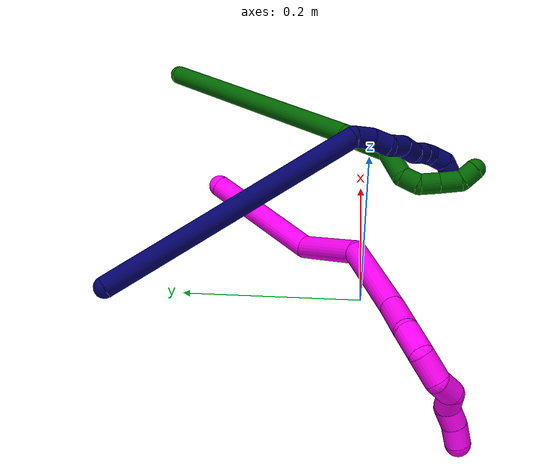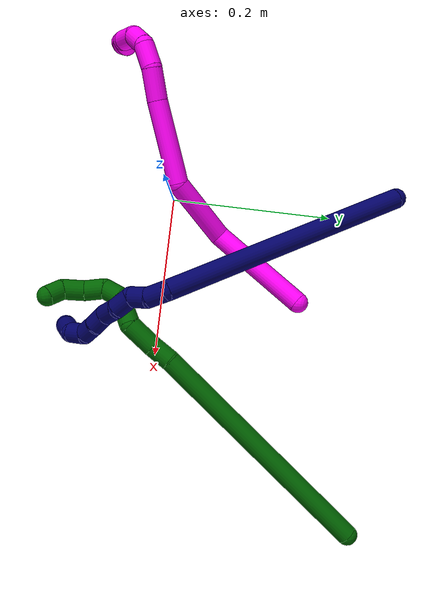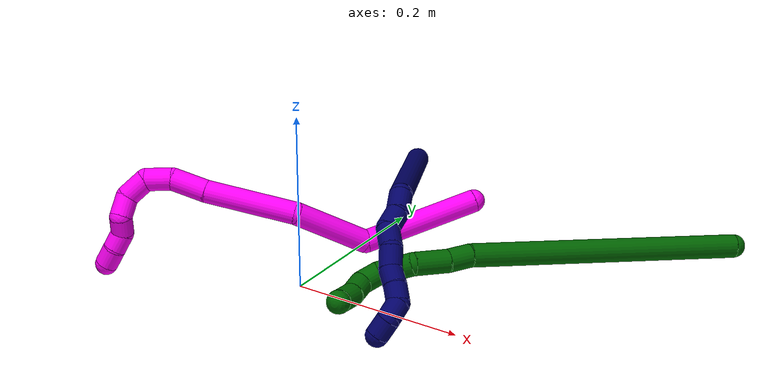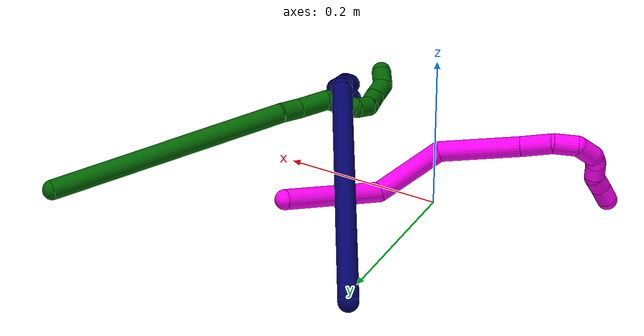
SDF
<sdf version="1.7">
 <world name="default">
  <model name="6">
   <static>0</static>
   <link name="6">
    <collision name="collision-cylinder-e_1_1_4">
     <pose>-0.078487 -0.091529 -0.092231 2.36002 -0.543374 -1.18913</pose>
     <geometry><cylinder><radius>0.0125</radius><length>0.303608</length></cylinder></geometry>
     <surface>
      <friction><ode><mu>1.16</mu><mu2>1.16</mu2><slip1>0</slip1><slip2>0</slip2></ode></friction>
      <contact><ode><kp>1e+06</kp><kd>1</kd><max_vel>0</max_vel><min_depth>0.001</min_depth></ode></contact>
     </surface>
    </collision>
    <visual name="visual-cylinder-e_1_1_4">
     <pose>-0.078487 -0.091529 -0.092231 2.36002 -0.543374 -1.18913</pose>
     <geometry><cylinder><radius>0.0125</radius><length>0.303608</length></cylinder></geometry>
     <material><ambient>0 0.392157 0.003922 1</ambient></material>
    </visual>
    <collision name="collision-cylinder-e_2_4_5">
     <pose>-0.16498 -0.188844 -0.192778 2.53369 -0.668835 -1.67295</pose>
     <geometry><cylinder><radius>0.0125</radius><length>0.025824</length></cylinder></geometry>
     <surface>
      <friction><ode><mu>1.16</mu><mu2>1.16</mu2><slip1>0</slip1><slip2>0</slip2></ode></friction>
      <contact><ode><kp>1e+06</kp><kd>1</kd><max_vel>0</max_vel><min_depth>0.001</min_depth></ode></contact>
     </surface>
    </collision>
    <visual name="visual-cylinder-e_2_4_5">
     <pose>-0.16498 -0.188844 -0.192778 2.53369 -0.668835 -1.67295</pose>
     <geometry><cylinder><radius>0.0125</radius><length>0.025824</length></cylinder></geometry>
     <material><ambient>0 0.392157 0.003922 1</ambient></material>
    </visual>
    <collision name="collision-cylinder-e_3_5_6">
     <pose>-0.183452 -0.205377 -0.212899 2.40315 -0.580293 -1.31432</pose>
     <geometry><cylinder><radius>0.0125</radius><length>0.03818</length></cylinder></geometry>
     <surface>
      <friction><ode><mu>1.16</mu><mu2>1.16</mu2><slip1>0</slip1><slip2>0</slip2></ode></friction>
      <contact><ode><kp>1e+06</kp><kd>1</kd><max_vel>0</max_vel><min_depth>0.001</min_depth></ode></contact>
     </surface>
    </collision>
    <visual name="visual-cylinder-e_3_5_6">
     <pose>-0.183452 -0.205377 -0.212899 2.40315 -0.580293 -1.31432</pose>
     <geometry><cylinder><radius>0.0125</radius><length>0.03818</length></cylinder></geometry>
     <material><ambient>0 0.392157 0.003922 1</ambient></material>
    </visual>
    <collision name="collision-cylinder-e_4_6_7">
     <pose>-0.21029 -0.22583 -0.227246 1.82681 -1.02096 -1.25519</pose>
     <geometry><cylinder><radius>0.0125</radius><length>0.038403</length></cylinder></geometry>
     <surface>
      <friction><ode><mu>1.16</mu><mu2>1.16</mu2><slip1>0</slip1><slip2>0</slip2></ode></friction>
      <contact><ode><kp>1e+06</kp><kd>1</kd><max_vel>0</max_vel><min_depth>0.001</min_depth></ode></contact>
     </surface>
    </collision>
    <visual name="visual-cylinder-e_4_6_7">
     <pose>-0.21029 -0.22583 -0.227246 1.82681 -1.02096 -1.25519</pose>
     <geometry><cylinder><radius>0.0125</radius><length>0.038403</length></cylinder></geometry>
     <material><ambient>0 0.392157 0.003922 1</ambient></material>
    </visual>
    <collision name="collision-cylinder-e_5_7_8">
     <pose>-0.234239 -0.237724 -0.237274 2.85732 -0.770957 -2.46352</pose>
     <geometry><cylinder><radius>0.0125</radius><length>0.02175</length></cylinder></geometry>
     <surface>
      <friction><ode><mu>1.16</mu><mu2>1.16</mu2><slip1>0</slip1><slip2>0</slip2></ode></friction>
      <contact><ode><kp>1e+06</kp><kd>1</kd><max_vel>0</max_vel><min_depth>0.001</min_depth></ode></contact>
     </surface>
    </collision>
    <visual name="visual-cylinder-e_5_7_8">
     <pose>-0.234239 -0.237724 -0.237274 2.85732 -0.770957 -2.46352</pose>
     <geometry><cylinder><radius>0.0125</radius><length>0.02175</length></cylinder></geometry>
     <material><ambient>0 0.392157 0.003922 1</ambient></material>
    </visual>
    <collision name="collision-cylinder-e_6_8_9">
     <pose>-0.245162 -0.238022 -0.256435 -2.98113 -0.275689 2.09104</pose>
     <geometry><cylinder><radius>0.0125</radius><length>0.02458</length></cylinder></geometry>
     <surface>
      <friction><ode><mu>1.16</mu><mu2>1.16</mu2><slip1>0</slip1><slip2>0</slip2></ode></friction>
      <contact><ode><kp>1e+06</kp><kd>1</kd><max_vel>0</max_vel><min_depth>0.001</min_depth></ode></contact>
     </surface>
    </collision>
    <visual name="visual-cylinder-e_6_8_9">
     <pose>-0.245162 -0.238022 -0.256435 -2.98113 -0.275689 2.09104</pose>
     <geometry><cylinder><radius>0.0125</radius><length>0.02458</length></cylinder></geometry>
     <material><ambient>0 0.392157 0.003922 1</ambient></material>
    </visual>
    <collision name="collision-cylinder-e_7_9_10">
     <pose>-0.251644 -0.237091 -0.280954 3.06715 -0.238842 -2.53978</pose>
     <geometry><cylinder><radius>0.0125</radius><length>0.026515</length></cylinder></geometry>
     <surface>
      <friction><ode><mu>1.16</mu><mu2>1.16</mu2><slip1>0</slip1><slip2>0</slip2></ode></friction>
      <contact><ode><kp>1e+06</kp><kd>1</kd><max_vel>0</max_vel><min_depth>0.001</min_depth></ode></contact>
     </surface>
    </collision>
    <visual name="visual-cylinder-e_7_9_10">
     <pose>-0.251644 -0.237091 -0.280954 3.06715 -0.238842 -2.53978</pose>
     <geometry><cylinder><radius>0.0125</radius><length>0.026515</length></cylinder></geometry>
     <material><ambient>0 0.392157 0.003922 1</ambient></material>
    </visual>
    <collision name="collision-cylinder-e_8_10_2">
     <pose>-0.251052 -0.237196 -0.303654 -3.05531 0.360541 -2.67645</pose>
     <geometry><cylinder><radius>0.0125</radius><length>0.021141</length></cylinder></geometry>
     <surface>
      <friction><ode><mu>1.16</mu><mu2>1.16</mu2><slip1>0</slip1><slip2>0</slip2></ode></friction>
      <contact><ode><kp>1e+06</kp><kd>1</kd><max_vel>0</max_vel><min_depth>0.001</min_depth></ode></contact>
     </surface>
    </collision>
    <visual name="visual-cylinder-e_8_10_2">
     <pose>-0.251052 -0.237196 -0.303654 -3.05531 0.360541 -2.67645</pose>
     <geometry><cylinder><radius>0.0125</radius><length>0.021141</length></cylinder></geometry>
     <material><ambient>0 0.392157 0.003922 1</ambient></material>
    </visual>
    <collision name="collision-sphere-2">
     <pose>-0.247323 -0.236344 -0.313508 0 -0 0</pose>
     <geometry><sphere><radius>0.0125</radius></sphere></geometry>
     <surface>
      <friction><ode><mu>1.16</mu><mu2>1.16</mu2><slip1>0</slip1><slip2>0</slip2></ode></friction>
      <contact><ode><kp>1e+06</kp><kd>1</kd><max_vel>0</max_vel><min_depth>0.001</min_depth></ode></contact>
     </surface>
    </collision>
    <visual name="visual-sphere-2">
     <pose>-0.247323 -0.236344 -0.313508 0 -0 0</pose>
     <geometry><sphere><radius>0.0125</radius></sphere></geometry>
     <material><ambient>0 0.392157 0.003922 1</ambient></material>
    </visual>
    <collision name="collision-sphere-10">
     <pose>-0.254781 -0.238049 -0.2938 0 -0 0</pose>
     <geometry><sphere><radius>0.0125</radius></sphere></geometry>
     <surface>
      <friction><ode><mu>1.16</mu><mu2>1.16</mu2><slip1>0</slip1><slip2>0</slip2></ode></friction>
      <contact><ode><kp>1e+06</kp><kd>1</kd><max_vel>0</max_vel><min_depth>0.001</min_depth></ode></contact>
     </surface>
    </collision>
    <visual name="visual-sphere-10">
     <pose>-0.254781 -0.238049 -0.2938 0 -0 0</pose>
     <geometry><sphere><radius>0.0125</radius></sphere></geometry>
     <material><ambient>0 0.392157 0.003922 1</ambient></material>
    </visual>
    <collision name="collision-sphere-9">
     <pose>-0.248508 -0.236133 -0.268109 0 -0 0</pose>
     <geometry><sphere><radius>0.0125</radius></sphere></geometry>
     <surface>
      <friction><ode><mu>1.16</mu><mu2>1.16</mu2><slip1>0</slip1><slip2>0</slip2></ode></friction>
      <contact><ode><kp>1e+06</kp><kd>1</kd><max_vel>0</max_vel><min_depth>0.001</min_depth></ode></contact>
     </surface>
    </collision>
    <visual name="visual-sphere-9">
     <pose>-0.248508 -0.236133 -0.268109 0 -0 0</pose>
     <geometry><sphere><radius>0.0125</radius></sphere></geometry>
     <material><ambient>0 0.392157 0.003922 1</ambient></material>
    </visual>
    <collision name="collision-sphere-4">
     <pose>-0.156973 -0.183059 -0.184463 0 -0 0</pose>
     <geometry><sphere><radius>0.0125</radius></sphere></geometry>
     <surface>
      <friction><ode><mu>1.16</mu><mu2>1.16</mu2><slip1>0</slip1><slip2>0</slip2></ode></friction>
      <contact><ode><kp>1e+06</kp><kd>1</kd><max_vel>0</max_vel><min_depth>0.001</min_depth></ode></contact>
     </surface>
    </collision>
    <visual name="visual-sphere-4">
     <pose>-0.156973 -0.183059 -0.184463 0 -0 0</pose>
     <geometry><sphere><radius>0.0125</radius></sphere></geometry>
     <material><ambient>0 0.392157 0.003922 1</ambient></material>
    </visual>
    <collision name="collision-sphere-1">
     <geometry><sphere><radius>0.0125</radius></sphere></geometry>
     <surface>
      <friction><ode><mu>1.16</mu><mu2>1.16</mu2><slip1>0</slip1><slip2>0</slip2></ode></friction>
      <contact><ode><kp>1e+06</kp><kd>1</kd><max_vel>0</max_vel><min_depth>0.001</min_depth></ode></contact>
     </surface>
    </collision>
    <visual name="visual-sphere-1">
     <geometry><sphere><radius>0.0125</radius></sphere></geometry>
     <material><ambient>0 0.392157 0.003922 1</ambient></material>
    </visual>
    <collision name="collision-sphere-8">
     <pose>-0.241817 -0.239911 -0.244761 0 -0 0</pose>
     <geometry><sphere><radius>0.0125</radius></sphere></geometry>
     <surface>
      <friction><ode><mu>1.16</mu><mu2>1.16</mu2><slip1>0</slip1><slip2>0</slip2></ode></friction>
      <contact><ode><kp>1e+06</kp><kd>1</kd><max_vel>0</max_vel><min_depth>0.001</min_depth></ode></contact>
     </surface>
    </collision>
    <visual name="visual-sphere-8">
     <pose>-0.241817 -0.239911 -0.244761 0 -0 0</pose>
     <geometry><sphere><radius>0.0125</radius></sphere></geometry>
     <material><ambient>0 0.392157 0.003922 1</ambient></material>
    </visual>
    <collision name="collision-sphere-5">
     <pose>-0.172986 -0.19463 -0.201093 0 -0 0</pose>
     <geometry><sphere><radius>0.0125</radius></sphere></geometry>
     <surface>
      <friction><ode><mu>1.16</mu><mu2>1.16</mu2><slip1>0</slip1><slip2>0</slip2></ode></friction>
      <contact><ode><kp>1e+06</kp><kd>1</kd><max_vel>0</max_vel><min_depth>0.001</min_depth></ode></contact>
     </surface>
    </collision>
    <visual name="visual-sphere-5">
     <pose>-0.172986 -0.19463 -0.201093 0 -0 0</pose>
     <geometry><sphere><radius>0.0125</radius></sphere></geometry>
     <material><ambient>0 0.392157 0.003922 1</ambient></material>
    </visual>
    <collision name="collision-sphere-6">
     <pose>-0.193919 -0.216123 -0.224706 0 -0 0</pose>
     <geometry><sphere><radius>0.0125</radius></sphere></geometry>
     <surface>
      <friction><ode><mu>1.16</mu><mu2>1.16</mu2><slip1>0</slip1><slip2>0</slip2></ode></friction>
      <contact><ode><kp>1e+06</kp><kd>1</kd><max_vel>0</max_vel><min_depth>0.001</min_depth></ode></contact>
     </surface>
    </collision>
    <visual name="visual-sphere-6">
     <pose>-0.193919 -0.216123 -0.224706 0 -0 0</pose>
     <geometry><sphere><radius>0.0125</radius></sphere></geometry>
     <material><ambient>0 0.392157 0.003922 1</ambient></material>
    </visual>
    <collision name="collision-sphere-7">
     <pose>-0.226661 -0.235536 -0.229787 0 -0 0</pose>
     <geometry><sphere><radius>0.0125</radius></sphere></geometry>
     <surface>
      <friction><ode><mu>1.16</mu><mu2>1.16</mu2><slip1>0</slip1><slip2>0</slip2></ode></friction>
      <contact><ode><kp>1e+06</kp><kd>1</kd><max_vel>0</max_vel><min_depth>0.001</min_depth></ode></contact>
     </surface>
    </collision>
    <visual name="visual-sphere-7">
     <pose>-0.226661 -0.235536 -0.229787 0 -0 0</pose>
     <geometry><sphere><radius>0.0125</radius></sphere></geometry>
     <material><ambient>0 0.392157 0.003922 1</ambient></material>
    </visual>
    <inertial>
     <pose>-0.13254 -0.143003 -0.150337 0 -0 0</pose>
     <mass>0.5</mass>
     <inertia>
      <ixx>-0.001148</ixx>
      <ixy>0</ixy>
      <ixz>0</ixz>
      <iyy>-0.001706</iyy>
      <iyz>0</iyz>
      <izz>0.00262</izz>
     </inertia>
    </inertial>
   </link>
   <pose>0.387752 0.261784 0.046021 -1.99849 -0.865846 0.596641</pose>
  </model>
  <model name="7">
   <static>0</static>
   <link name="7">
    <collision name="collision-cylinder-e_1_1_4">
     <pose>0.126047 -0.098837 0.012875 1.44126 0.901719 0.803984</pose>
     <geometry><cylinder><radius>0.0125</radius><length>0.321388</length></cylinder></geometry>
     <surface>
      <friction><ode><mu>1.16</mu><mu2>1.16</mu2><slip1>0</slip1><slip2>0</slip2></ode></friction>
      <contact><ode><kp>1e+06</kp><kd>1</kd><max_vel>0</max_vel><min_depth>0.001</min_depth></ode></contact>
     </surface>
    </collision>
    <visual name="visual-cylinder-e_1_1_4">
     <pose>0.126047 -0.098837 0.012875 1.44126 0.901719 0.803984</pose>
     <geometry><cylinder><radius>0.0125</radius><length>0.321388</length></cylinder></geometry>
     <material><ambient>0.003922 0 0.403922 1</ambient></material>
    </visual>
    <collision name="collision-cylinder-e_2_4_5">
     <pose>0.255888 -0.209045 0.021946 1.89368 0.306398 0.422571</pose>
     <geometry><cylinder><radius>0.0125</radius><length>0.025151</length></cylinder></geometry>
     <surface>
      <friction><ode><mu>1.16</mu><mu2>1.16</mu2><slip1>0</slip1><slip2>0</slip2></ode></friction>
      <contact><ode><kp>1e+06</kp><kd>1</kd><max_vel>0</max_vel><min_depth>0.001</min_depth></ode></contact>
     </surface>
    </collision>
    <visual name="visual-cylinder-e_2_4_5">
     <pose>0.255888 -0.209045 0.021946 1.89368 0.306398 0.422571</pose>
     <geometry><cylinder><radius>0.0125</radius><length>0.025151</length></cylinder></geometry>
     <material><ambient>0.003922 0 0.403922 1</ambient></material>
    </visual>
    <collision name="collision-cylinder-e_3_5_6">
     <pose>0.259936 -0.231539 0.017142 1.66034 0.022849 0.024993</pose>
     <geometry><cylinder><radius>0.0125</radius><length>0.022343</length></cylinder></geometry>
     <surface>
      <friction><ode><mu>1.16</mu><mu2>1.16</mu2><slip1>0</slip1><slip2>0</slip2></ode></friction>
      <contact><ode><kp>1e+06</kp><kd>1</kd><max_vel>0</max_vel><min_depth>0.001</min_depth></ode></contact>
     </surface>
    </collision>
    <visual name="visual-cylinder-e_3_5_6">
     <pose>0.259936 -0.231539 0.017142 1.66034 0.022849 0.024993</pose>
     <geometry><cylinder><radius>0.0125</radius><length>0.022343</length></cylinder></geometry>
     <material><ambient>0.003922 0 0.403922 1</ambient></material>
    </visual>
    <collision name="collision-cylinder-e_4_6_7">
     <pose>0.264541 -0.25223 0.009377 2.18642 0.355418 0.668052</pose>
     <geometry><cylinder><radius>0.0125</radius><length>0.025</length></cylinder></geometry>
     <surface>
      <friction><ode><mu>1.16</mu><mu2>1.16</mu2><slip1>0</slip1><slip2>0</slip2></ode></friction>
      <contact><ode><kp>1e+06</kp><kd>1</kd><max_vel>0</max_vel><min_depth>0.001</min_depth></ode></contact>
     </surface>
    </collision>
    <visual name="visual-cylinder-e_4_6_7">
     <pose>0.264541 -0.25223 0.009377 2.18642 0.355418 0.668052</pose>
     <geometry><cylinder><radius>0.0125</radius><length>0.025</length></cylinder></geometry>
     <material><ambient>0.003922 0 0.403922 1</ambient></material>
    </visual>
    <collision name="collision-cylinder-e_5_7_8">
     <pose>0.268859 -0.271703 -0.004106 2.16656 -0.002708 -0.005108</pose>
     <geometry><cylinder><radius>0.0125</radius><length>0.023935</length></cylinder></geometry>
     <surface>
      <friction><ode><mu>1.16</mu><mu2>1.16</mu2><slip1>0</slip1><slip2>0</slip2></ode></friction>
      <contact><ode><kp>1e+06</kp><kd>1</kd><max_vel>0</max_vel><min_depth>0.001</min_depth></ode></contact>
     </surface>
    </collision>
    <visual name="visual-cylinder-e_5_7_8">
     <pose>0.268859 -0.271703 -0.004106 2.16656 -0.002708 -0.005108</pose>
     <geometry><cylinder><radius>0.0125</radius><length>0.023935</length></cylinder></geometry>
     <material><ambient>0.003922 0 0.403922 1</ambient></material>
    </visual>
    <collision name="collision-cylinder-e_6_8_9">
     <pose>0.272514 -0.288908 -0.017359 2.3012 0.359959 0.773425</pose>
     <geometry><cylinder><radius>0.0125</radius><length>0.02094</length></cylinder></geometry>
     <surface>
      <friction><ode><mu>1.16</mu><mu2>1.16</mu2><slip1>0</slip1><slip2>0</slip2></ode></friction>
      <contact><ode><kp>1e+06</kp><kd>1</kd><max_vel>0</max_vel><min_depth>0.001</min_depth></ode></contact>
     </surface>
    </collision>
    <visual name="visual-cylinder-e_6_8_9">
     <pose>0.272514 -0.288908 -0.017359 2.3012 0.359959 0.773425</pose>
     <geometry><cylinder><radius>0.0125</radius><length>0.02094</length></cylinder></geometry>
     <material><ambient>0.003922 0 0.403922 1</ambient></material>
    </visual>
    <collision name="collision-cylinder-e_7_9_10">
     <pose>0.278251 -0.303719 -0.030177 2.26713 0.206315 0.435941</pose>
     <geometry><cylinder><radius>0.0125</radius><length>0.020007</length></cylinder></geometry>
     <surface>
      <friction><ode><mu>1.16</mu><mu2>1.16</mu2><slip1>0</slip1><slip2>0</slip2></ode></friction>
      <contact><ode><kp>1e+06</kp><kd>1</kd><max_vel>0</max_vel><min_depth>0.001</min_depth></ode></contact>
     </surface>
    </collision>
    <visual name="visual-cylinder-e_7_9_10">
     <pose>0.278251 -0.303719 -0.030177 2.26713 0.206315 0.435941</pose>
     <geometry><cylinder><radius>0.0125</radius><length>0.020007</length></cylinder></geometry>
     <material><ambient>0.003922 0 0.403922 1</ambient></material>
    </visual>
    <collision name="collision-cylinder-e_8_10_11">
     <pose>0.27975 -0.321599 -0.037373 1.65886 -0.052855 -0.057724</pose>
     <geometry><cylinder><radius>0.0125</radius><length>0.020846</length></cylinder></geometry>
     <surface>
      <friction><ode><mu>1.16</mu><mu2>1.16</mu2><slip1>0</slip1><slip2>0</slip2></ode></friction>
      <contact><ode><kp>1e+06</kp><kd>1</kd><max_vel>0</max_vel><min_depth>0.001</min_depth></ode></contact>
     </surface>
    </collision>
    <visual name="visual-cylinder-e_8_10_11">
     <pose>0.27975 -0.321599 -0.037373 1.65886 -0.052855 -0.057724</pose>
     <geometry><cylinder><radius>0.0125</radius><length>0.020846</length></cylinder></geometry>
     <material><ambient>0.003922 0 0.403922 1</ambient></material>
    </visual>
    <collision name="collision-cylinder-e_9_11_2">
     <pose>0.272633 -0.339622 -0.039783 1.76372 -0.699816 -0.834221</pose>
     <geometry><cylinder><radius>0.0125</radius><length>0.020391</length></cylinder></geometry>
     <surface>
      <friction><ode><mu>1.16</mu><mu2>1.16</mu2><slip1>0</slip1><slip2>0</slip2></ode></friction>
      <contact><ode><kp>1e+06</kp><kd>1</kd><max_vel>0</max_vel><min_depth>0.001</min_depth></ode></contact>
     </surface>
    </collision>
    <visual name="visual-cylinder-e_9_11_2">
     <pose>0.272633 -0.339622 -0.039783 1.76372 -0.699816 -0.834221</pose>
     <geometry><cylinder><radius>0.0125</radius><length>0.020391</length></cylinder></geometry>
     <material><ambient>0.003922 0 0.403922 1</ambient></material>
    </visual>
    <collision name="collision-sphere-2">
     <pose>0.266066 -0.347276 -0.041279 0 -0 0</pose>
     <geometry><sphere><radius>0.0125</radius></sphere></geometry>
     <surface>
      <friction><ode><mu>1.16</mu><mu2>1.16</mu2><slip1>0</slip1><slip2>0</slip2></ode></friction>
      <contact><ode><kp>1e+06</kp><kd>1</kd><max_vel>0</max_vel><min_depth>0.001</min_depth></ode></contact>
     </surface>
    </collision>
    <visual name="visual-sphere-2">
     <pose>0.266066 -0.347276 -0.041279 0 -0 0</pose>
     <geometry><sphere><radius>0.0125</radius></sphere></geometry>
     <material><ambient>0.003922 0 0.403922 1</ambient></material>
    </visual>
    <collision name="collision-sphere-11">
     <pose>0.279199 -0.331967 -0.038288 0 -0 0</pose>
     <geometry><sphere><radius>0.0125</radius></sphere></geometry>
     <surface>
      <friction><ode><mu>1.16</mu><mu2>1.16</mu2><slip1>0</slip1><slip2>0</slip2></ode></friction>
      <contact><ode><kp>1e+06</kp><kd>1</kd><max_vel>0</max_vel><min_depth>0.001</min_depth></ode></contact>
     </surface>
    </collision>
    <visual name="visual-sphere-11">
     <pose>0.279199 -0.331967 -0.038288 0 -0 0</pose>
     <geometry><sphere><radius>0.0125</radius></sphere></geometry>
     <material><ambient>0.003922 0 0.403922 1</ambient></material>
    </visual>
    <collision name="collision-sphere-10">
     <pose>0.280301 -0.311231 -0.036457 0 -0 0</pose>
     <geometry><sphere><radius>0.0125</radius></sphere></geometry>
     <surface>
      <friction><ode><mu>1.16</mu><mu2>1.16</mu2><slip1>0</slip1><slip2>0</slip2></ode></friction>
      <contact><ode><kp>1e+06</kp><kd>1</kd><max_vel>0</max_vel><min_depth>0.001</min_depth></ode></contact>
     </surface>
    </collision>
    <visual name="visual-sphere-10">
     <pose>0.280301 -0.311231 -0.036457 0 -0 0</pose>
     <geometry><sphere><radius>0.0125</radius></sphere></geometry>
     <material><ambient>0.003922 0 0.403922 1</ambient></material>
    </visual>
    <collision name="collision-sphere-9">
     <pose>0.276202 -0.296207 -0.023897 0 -0 0</pose>
     <geometry><sphere><radius>0.0125</radius></sphere></geometry>
     <surface>
      <friction><ode><mu>1.16</mu><mu2>1.16</mu2><slip1>0</slip1><slip2>0</slip2></ode></friction>
      <contact><ode><kp>1e+06</kp><kd>1</kd><max_vel>0</max_vel><min_depth>0.001</min_depth></ode></contact>
     </surface>
    </collision>
    <visual name="visual-sphere-9">
     <pose>0.276202 -0.296207 -0.023897 0 -0 0</pose>
     <geometry><sphere><radius>0.0125</radius></sphere></geometry>
     <material><ambient>0.003922 0 0.403922 1</ambient></material>
    </visual>
    <collision name="collision-sphere-4">
     <pose>0.252095 -0.197675 0.02575 0 -0 0</pose>
     <geometry><sphere><radius>0.0125</radius></sphere></geometry>
     <surface>
      <friction><ode><mu>1.16</mu><mu2>1.16</mu2><slip1>0</slip1><slip2>0</slip2></ode></friction>
      <contact><ode><kp>1e+06</kp><kd>1</kd><max_vel>0</max_vel><min_depth>0.001</min_depth></ode></contact>
     </surface>
    </collision>
    <visual name="visual-sphere-4">
     <pose>0.252095 -0.197675 0.02575 0 -0 0</pose>
     <geometry><sphere><radius>0.0125</radius></sphere></geometry>
     <material><ambient>0.003922 0 0.403922 1</ambient></material>
    </visual>
    <collision name="collision-sphere-1">
     <geometry><sphere><radius>0.0125</radius></sphere></geometry>
     <surface>
      <friction><ode><mu>1.16</mu><mu2>1.16</mu2><slip1>0</slip1><slip2>0</slip2></ode></friction>
      <contact><ode><kp>1e+06</kp><kd>1</kd><max_vel>0</max_vel><min_depth>0.001</min_depth></ode></contact>
     </surface>
    </collision>
    <visual name="visual-sphere-1">
     <geometry><sphere><radius>0.0125</radius></sphere></geometry>
     <material><ambient>0.003922 0 0.403922 1</ambient></material>
    </visual>
    <collision name="collision-sphere-8">
     <pose>0.268826 -0.281609 -0.010821 0 -0 0</pose>
     <geometry><sphere><radius>0.0125</radius></sphere></geometry>
     <surface>
      <friction><ode><mu>1.16</mu><mu2>1.16</mu2><slip1>0</slip1><slip2>0</slip2></ode></friction>
      <contact><ode><kp>1e+06</kp><kd>1</kd><max_vel>0</max_vel><min_depth>0.001</min_depth></ode></contact>
     </surface>
    </collision>
    <visual name="visual-sphere-8">
     <pose>0.268826 -0.281609 -0.010821 0 -0 0</pose>
     <geometry><sphere><radius>0.0125</radius></sphere></geometry>
     <material><ambient>0.003922 0 0.403922 1</ambient></material>
    </visual>
    <collision name="collision-sphere-5">
     <pose>0.259681 -0.220415 0.018141 0 -0 0</pose>
     <geometry><sphere><radius>0.0125</radius></sphere></geometry>
     <surface>
      <friction><ode><mu>1.16</mu><mu2>1.16</mu2><slip1>0</slip1><slip2>0</slip2></ode></friction>
      <contact><ode><kp>1e+06</kp><kd>1</kd><max_vel>0</max_vel><min_depth>0.001</min_depth></ode></contact>
     </surface>
    </collision>
    <visual name="visual-sphere-5">
     <pose>0.259681 -0.220415 0.018141 0 -0 0</pose>
     <geometry><sphere><radius>0.0125</radius></sphere></geometry>
     <material><ambient>0.003922 0 0.403922 1</ambient></material>
    </visual>
    <collision name="collision-sphere-6">
     <pose>0.260192 -0.242663 0.016144 0 -0 0</pose>
     <geometry><sphere><radius>0.0125</radius></sphere></geometry>
     <surface>
      <friction><ode><mu>1.16</mu><mu2>1.16</mu2><slip1>0</slip1><slip2>0</slip2></ode></friction>
      <contact><ode><kp>1e+06</kp><kd>1</kd><max_vel>0</max_vel><min_depth>0.001</min_depth></ode></contact>
     </surface>
    </collision>
    <visual name="visual-sphere-6">
     <pose>0.260192 -0.242663 0.016144 0 -0 0</pose>
     <geometry><sphere><radius>0.0125</radius></sphere></geometry>
     <material><ambient>0.003922 0 0.403922 1</ambient></material>
    </visual>
    <collision name="collision-sphere-7">
     <pose>0.268891 -0.261798 0.002609 0 -0 0</pose>
     <geometry><sphere><radius>0.0125</radius></sphere></geometry>
     <surface>
      <friction><ode><mu>1.16</mu><mu2>1.16</mu2><slip1>0</slip1><slip2>0</slip2></ode></friction>
      <contact><ode><kp>1e+06</kp><kd>1</kd><max_vel>0</max_vel><min_depth>0.001</min_depth></ode></contact>
     </surface>
    </collision>
    <visual name="visual-sphere-7">
     <pose>0.268891 -0.261798 0.002609 0 -0 0</pose>
     <geometry><sphere><radius>0.0125</radius></sphere></geometry>
     <material><ambient>0.003922 0 0.403922 1</ambient></material>
    </visual>
    <inertial>
     <pose>0.176933 -0.161521 0.005303 0 -0 0</pose>
     <mass>0.5</mass>
     <inertia>
      <ixx>0.002473</ixx>
      <ixy>0</ixy>
      <ixz>0</ixz>
      <iyy>0.003019</iyy>
      <iyz>0</iyz>
      <izz>-0.000463</izz>
     </inertia>
    </inertial>
   </link>
   <pose>-0.030461 0.277985 0.035366 0.546845 -0.704505 -0.405827</pose>
  </model>
  <model name="10">
   <static>0</static>
   <link name="10">
    <collision name="collision-cylinder-e_1_1_4">
     <pose>-0.02858 -0.014101 0.056453 0.244777 -0.456554 -0.057138</pose>
     <geometry><cylinder><radius>0.0125</radius><length>0.129655</length></cylinder></geometry>
     <surface>
      <friction><ode><mu>1.16</mu><mu2>1.16</mu2><slip1>0</slip1><slip2>0</slip2></ode></friction>
      <contact><ode><kp>1e+06</kp><kd>1</kd><max_vel>0</max_vel><min_depth>0.001</min_depth></ode></contact>
     </surface>
    </collision>
    <visual name="visual-cylinder-e_1_1_4">
     <pose>-0.02858 -0.014101 0.056453 0.244777 -0.456554 -0.057138</pose>
     <geometry><cylinder><radius>0.0125</radius><length>0.129655</length></cylinder></geometry>
     <material><ambient>1 0 0.964706 1</ambient></material>
    </visual>
    <collision name="collision-cylinder-e_2_4_5">
     <pose>-0.095816 -0.021664 0.13249 -0.322263 -1.08024 0.194303</pose>
     <geometry><cylinder><radius>0.0125</radius><length>0.087649</length></cylinder></geometry>
     <surface>
      <friction><ode><mu>1.16</mu><mu2>1.16</mu2><slip1>0</slip1><slip2>0</slip2></ode></friction>
      <contact><ode><kp>1e+06</kp><kd>1</kd><max_vel>0</max_vel><min_depth>0.001</min_depth></ode></contact>
     </surface>
    </collision>
    <visual name="visual-cylinder-e_2_4_5">
     <pose>-0.095816 -0.021664 0.13249 -0.322263 -1.08024 0.194303</pose>
     <geometry><cylinder><radius>0.0125</radius><length>0.087649</length></cylinder></geometry>
     <material><ambient>1 0 0.964706 1</ambient></material>
    </visual>
    <collision name="collision-cylinder-e_3_5_6">
     <pose>-0.177398 -0.034948 0.169815 0.840781 -1.01598 -0.487843</pose>
     <geometry><cylinder><radius>0.0125</radius><length>0.101002</length></cylinder></geometry>
     <surface>
      <friction><ode><mu>1.16</mu><mu2>1.16</mu2><slip1>0</slip1><slip2>0</slip2></ode></friction>
      <contact><ode><kp>1e+06</kp><kd>1</kd><max_vel>0</max_vel><min_depth>0.001</min_depth></ode></contact>
     </surface>
    </collision>
    <visual name="visual-cylinder-e_3_5_6">
     <pose>-0.177398 -0.034948 0.169815 0.840781 -1.01598 -0.487843</pose>
     <geometry><cylinder><radius>0.0125</radius><length>0.101002</length></cylinder></geometry>
     <material><ambient>1 0 0.964706 1</ambient></material>
    </visual>
    <collision name="collision-cylinder-e_4_6_7">
     <pose>-0.237852 -0.062188 0.192456 0.986901 -1.10151 -0.638045</pose>
     <geometry><cylinder><radius>0.0125</radius><length>0.039307</length></cylinder></geometry>
     <surface>
      <friction><ode><mu>1.16</mu><mu2>1.16</mu2><slip1>0</slip1><slip2>0</slip2></ode></friction>
      <contact><ode><kp>1e+06</kp><kd>1</kd><max_vel>0</max_vel><min_depth>0.001</min_depth></ode></contact>
     </surface>
    </collision>
    <visual name="visual-cylinder-e_4_6_7">
     <pose>-0.237852 -0.062188 0.192456 0.986901 -1.10151 -0.638045</pose>
     <geometry><cylinder><radius>0.0125</radius><length>0.039307</length></cylinder></geometry>
     <material><ambient>1 0 0.964706 1</ambient></material>
    </visual>
    <collision name="collision-cylinder-e_5_7_8">
     <pose>-0.265771 -0.077133 0.205078 0.772771 -0.766715 -0.325264</pose>
     <geometry><cylinder><radius>0.0125</radius><length>0.029952</length></cylinder></geometry>
     <surface>
      <friction><ode><mu>1.16</mu><mu2>1.16</mu2><slip1>0</slip1><slip2>0</slip2></ode></friction>
      <contact><ode><kp>1e+06</kp><kd>1</kd><max_vel>0</max_vel><min_depth>0.001</min_depth></ode></contact>
     </surface>
    </collision>
    <visual name="visual-cylinder-e_5_7_8">
     <pose>-0.265771 -0.077133 0.205078 0.772771 -0.766715 -0.325264</pose>
     <geometry><cylinder><radius>0.0125</radius><length>0.029952</length></cylinder></geometry>
     <material><ambient>1 0 0.964706 1</ambient></material>
    </visual>
    <collision name="collision-cylinder-e_6_8_9">
     <pose>-0.277241 -0.092789 0.224178 0.620191 -0.077049 -0.0247</pose>
     <geometry><cylinder><radius>0.0125</radius><length>0.028046</length></cylinder></geometry>
     <surface>
      <friction><ode><mu>1.16</mu><mu2>1.16</mu2><slip1>0</slip1><slip2>0</slip2></ode></friction>
      <contact><ode><kp>1e+06</kp><kd>1</kd><max_vel>0</max_vel><min_depth>0.001</min_depth></ode></contact>
     </surface>
    </collision>
    <visual name="visual-cylinder-e_6_8_9">
     <pose>-0.277241 -0.092789 0.224178 0.620191 -0.077049 -0.0247</pose>
     <geometry><cylinder><radius>0.0125</radius><length>0.028046</length></cylinder></geometry>
     <material><ambient>1 0 0.964706 1</ambient></material>
    </visual>
    <collision name="collision-cylinder-e_7_9_10">
     <pose>-0.27323 -0.103678 0.245777 0.26398 0.448081 0.060485</pose>
     <geometry><cylinder><radius>0.0125</radius><length>0.023495</length></cylinder></geometry>
     <surface>
      <friction><ode><mu>1.16</mu><mu2>1.16</mu2><slip1>0</slip1><slip2>0</slip2></ode></friction>
      <contact><ode><kp>1e+06</kp><kd>1</kd><max_vel>0</max_vel><min_depth>0.001</min_depth></ode></contact>
     </surface>
    </collision>
    <visual name="visual-cylinder-e_7_9_10">
     <pose>-0.27323 -0.103678 0.245777 0.26398 0.448081 0.060485</pose>
     <geometry><cylinder><radius>0.0125</radius><length>0.023495</length></cylinder></geometry>
     <material><ambient>1 0 0.964706 1</ambient></material>
    </visual>
    <collision name="collision-cylinder-e_8_10_11">
     <pose>-0.261482 -0.113341 0.259113 1.14681 0.721316 0.477817</pose>
     <geometry><cylinder><radius>0.0125</radius><length>0.020166</length></cylinder></geometry>
     <surface>
      <friction><ode><mu>1.16</mu><mu2>1.16</mu2><slip1>0</slip1><slip2>0</slip2></ode></friction>
      <contact><ode><kp>1e+06</kp><kd>1</kd><max_vel>0</max_vel><min_depth>0.001</min_depth></ode></contact>
     </surface>
    </collision>
    <visual name="visual-cylinder-e_8_10_11">
     <pose>-0.261482 -0.113341 0.259113 1.14681 0.721316 0.477817</pose>
     <geometry><cylinder><radius>0.0125</radius><length>0.020166</length></cylinder></geometry>
     <material><ambient>1 0 0.964706 1</ambient></material>
    </visual>
    <collision name="collision-cylinder-e_9_11_12">
     <pose>-0.252201 -0.12641 0.269663 0.692501 0.265103 0.096135</pose>
     <geometry><cylinder><radius>0.0125</radius><length>0.020019</length></cylinder></geometry>
     <surface>
      <friction><ode><mu>1.16</mu><mu2>1.16</mu2><slip1>0</slip1><slip2>0</slip2></ode></friction>
      <contact><ode><kp>1e+06</kp><kd>1</kd><max_vel>0</max_vel><min_depth>0.001</min_depth></ode></contact>
     </surface>
    </collision>
    <visual name="visual-cylinder-e_9_11_12">
     <pose>-0.252201 -0.12641 0.269663 0.692501 0.265103 0.096135</pose>
     <geometry><cylinder><radius>0.0125</radius><length>0.020019</length></cylinder></geometry>
     <material><ambient>1 0 0.964706 1</ambient></material>
    </visual>
    <collision name="collision-cylinder-e_10_12_2">
     <pose>-0.247063 -0.140415 0.283379 0.895152 0.245434 0.118282</pose>
     <geometry><cylinder><radius>0.0125</radius><length>0.020709</length></cylinder></geometry>
     <surface>
      <friction><ode><mu>1.16</mu><mu2>1.16</mu2><slip1>0</slip1><slip2>0</slip2></ode></friction>
      <contact><ode><kp>1e+06</kp><kd>1</kd><max_vel>0</max_vel><min_depth>0.001</min_depth></ode></contact>
     </surface>
    </collision>
    <visual name="visual-cylinder-e_10_12_2">
     <pose>-0.247063 -0.140415 0.283379 0.895152 0.245434 0.118282</pose>
     <geometry><cylinder><radius>0.0125</radius><length>0.020709</length></cylinder></geometry>
     <material><ambient>1 0 0.964706 1</ambient></material>
    </visual>
    <collision name="collision-sphere-2">
     <pose>-0.244547 -0.148252 0.28966 0 -0 0</pose>
     <geometry><sphere><radius>0.0125</radius></sphere></geometry>
     <surface>
      <friction><ode><mu>1.16</mu><mu2>1.16</mu2><slip1>0</slip1><slip2>0</slip2></ode></friction>
      <contact><ode><kp>1e+06</kp><kd>1</kd><max_vel>0</max_vel><min_depth>0.001</min_depth></ode></contact>
     </surface>
    </collision>
    <visual name="visual-sphere-2">
     <pose>-0.244547 -0.148252 0.28966 0 -0 0</pose>
     <geometry><sphere><radius>0.0125</radius></sphere></geometry>
     <material><ambient>1 0 0.964706 1</ambient></material>
    </visual>
    <collision name="collision-sphere-12">
     <pose>-0.249579 -0.132577 0.277097 0 -0 0</pose>
     <geometry><sphere><radius>0.0125</radius></sphere></geometry>
     <surface>
      <friction><ode><mu>1.16</mu><mu2>1.16</mu2><slip1>0</slip1><slip2>0</slip2></ode></friction>
      <contact><ode><kp>1e+06</kp><kd>1</kd><max_vel>0</max_vel><min_depth>0.001</min_depth></ode></contact>
     </surface>
    </collision>
    <visual name="visual-sphere-12">
     <pose>-0.249579 -0.132577 0.277097 0 -0 0</pose>
     <geometry><sphere><radius>0.0125</radius></sphere></geometry>
     <material><ambient>1 0 0.964706 1</ambient></material>
    </visual>
    <collision name="collision-sphere-11">
     <pose>-0.254824 -0.120243 0.262228 0 -0 0</pose>
     <geometry><sphere><radius>0.0125</radius></sphere></geometry>
     <surface>
      <friction><ode><mu>1.16</mu><mu2>1.16</mu2><slip1>0</slip1><slip2>0</slip2></ode></friction>
      <contact><ode><kp>1e+06</kp><kd>1</kd><max_vel>0</max_vel><min_depth>0.001</min_depth></ode></contact>
     </surface>
    </collision>
    <visual name="visual-sphere-11">
     <pose>-0.254824 -0.120243 0.262228 0 -0 0</pose>
     <geometry><sphere><radius>0.0125</radius></sphere></geometry>
     <material><ambient>1 0 0.964706 1</ambient></material>
    </visual>
    <collision name="collision-sphere-10">
     <pose>-0.268141 -0.10644 0.255998 0 -0 0</pose>
     <geometry><sphere><radius>0.0125</radius></sphere></geometry>
     <surface>
      <friction><ode><mu>1.16</mu><mu2>1.16</mu2><slip1>0</slip1><slip2>0</slip2></ode></friction>
      <contact><ode><kp>1e+06</kp><kd>1</kd><max_vel>0</max_vel><min_depth>0.001</min_depth></ode></contact>
     </surface>
    </collision>
    <visual name="visual-sphere-10">
     <pose>-0.268141 -0.10644 0.255998 0 -0 0</pose>
     <geometry><sphere><radius>0.0125</radius></sphere></geometry>
     <material><ambient>1 0 0.964706 1</ambient></material>
    </visual>
    <collision name="collision-sphere-9">
     <pose>-0.27832 -0.100915 0.235556 0 -0 0</pose>
     <geometry><sphere><radius>0.0125</radius></sphere></geometry>
     <surface>
      <friction><ode><mu>1.16</mu><mu2>1.16</mu2><slip1>0</slip1><slip2>0</slip2></ode></friction>
      <contact><ode><kp>1e+06</kp><kd>1</kd><max_vel>0</max_vel><min_depth>0.001</min_depth></ode></contact>
     </surface>
    </collision>
    <visual name="visual-sphere-9">
     <pose>-0.27832 -0.100915 0.235556 0 -0 0</pose>
     <geometry><sphere><radius>0.0125</radius></sphere></geometry>
     <material><ambient>1 0 0.964706 1</ambient></material>
    </visual>
    <collision name="collision-sphere-4">
     <pose>-0.057159 -0.028203 0.112907 0 -0 0</pose>
     <geometry><sphere><radius>0.0125</radius></sphere></geometry>
     <surface>
      <friction><ode><mu>1.16</mu><mu2>1.16</mu2><slip1>0</slip1><slip2>0</slip2></ode></friction>
      <contact><ode><kp>1e+06</kp><kd>1</kd><max_vel>0</max_vel><min_depth>0.001</min_depth></ode></contact>
     </surface>
    </collision>
    <visual name="visual-sphere-4">
     <pose>-0.057159 -0.028203 0.112907 0 -0 0</pose>
     <geometry><sphere><radius>0.0125</radius></sphere></geometry>
     <material><ambient>1 0 0.964706 1</ambient></material>
    </visual>
    <collision name="collision-sphere-1">
     <geometry><sphere><radius>0.0125</radius></sphere></geometry>
     <surface>
      <friction><ode><mu>1.16</mu><mu2>1.16</mu2><slip1>0</slip1><slip2>0</slip2></ode></friction>
      <contact><ode><kp>1e+06</kp><kd>1</kd><max_vel>0</max_vel><min_depth>0.001</min_depth></ode></contact>
     </surface>
    </collision>
    <visual name="visual-sphere-1">
     <geometry><sphere><radius>0.0125</radius></sphere></geometry>
     <material><ambient>1 0 0.964706 1</ambient></material>
    </visual>
    <collision name="collision-sphere-8">
     <pose>-0.276161 -0.084663 0.212801 0 -0 0</pose>
     <geometry><sphere><radius>0.0125</radius></sphere></geometry>
     <surface>
      <friction><ode><mu>1.16</mu><mu2>1.16</mu2><slip1>0</slip1><slip2>0</slip2></ode></friction>
      <contact><ode><kp>1e+06</kp><kd>1</kd><max_vel>0</max_vel><min_depth>0.001</min_depth></ode></contact>
     </surface>
    </collision>
    <visual name="visual-sphere-8">
     <pose>-0.276161 -0.084663 0.212801 0 -0 0</pose>
     <geometry><sphere><radius>0.0125</radius></sphere></geometry>
     <material><ambient>1 0 0.964706 1</ambient></material>
    </visual>
    <collision name="collision-sphere-5">
     <pose>-0.134472 -0.015125 0.152074 0 -0 0</pose>
     <geometry><sphere><radius>0.0125</radius></sphere></geometry>
     <surface>
      <friction><ode><mu>1.16</mu><mu2>1.16</mu2><slip1>0</slip1><slip2>0</slip2></ode></friction>
      <contact><ode><kp>1e+06</kp><kd>1</kd><max_vel>0</max_vel><min_depth>0.001</min_depth></ode></contact>
     </surface>
    </collision>
    <visual name="visual-sphere-5">
     <pose>-0.134472 -0.015125 0.152074 0 -0 0</pose>
     <geometry><sphere><radius>0.0125</radius></sphere></geometry>
     <material><ambient>1 0 0.964706 1</ambient></material>
    </visual>
    <collision name="collision-sphere-6">
     <pose>-0.220323 -0.054772 0.187556 0 -0 0</pose>
     <geometry><sphere><radius>0.0125</radius></sphere></geometry>
     <surface>
      <friction><ode><mu>1.16</mu><mu2>1.16</mu2><slip1>0</slip1><slip2>0</slip2></ode></friction>
      <contact><ode><kp>1e+06</kp><kd>1</kd><max_vel>0</max_vel><min_depth>0.001</min_depth></ode></contact>
     </surface>
    </collision>
    <visual name="visual-sphere-6">
     <pose>-0.220323 -0.054772 0.187556 0 -0 0</pose>
     <geometry><sphere><radius>0.0125</radius></sphere></geometry>
     <material><ambient>1 0 0.964706 1</ambient></material>
    </visual>
    <collision name="collision-sphere-7">
     <pose>-0.255381 -0.069604 0.197356 0 -0 0</pose>
     <geometry><sphere><radius>0.0125</radius></sphere></geometry>
     <surface>
      <friction><ode><mu>1.16</mu><mu2>1.16</mu2><slip1>0</slip1><slip2>0</slip2></ode></friction>
      <contact><ode><kp>1e+06</kp><kd>1</kd><max_vel>0</max_vel><min_depth>0.001</min_depth></ode></contact>
     </surface>
    </collision>
    <visual name="visual-sphere-7">
     <pose>-0.255381 -0.069604 0.197356 0 -0 0</pose>
     <geometry><sphere><radius>0.0125</radius></sphere></geometry>
     <material><ambient>1 0 0.964706 1</ambient></material>
    </visual>
    <inertial>
     <pose>-0.153928 -0.049548 0.15669 0 -0 0</pose>
     <mass>0.5</mass>
     <inertia>
      <ixx>0.000203</ixx>
      <ixy>0</ixy>
      <ixz>0</ixz>
      <iyy>0.000297</iyy>
      <iyz>0</iyz>
      <izz>0.000316</izz>
     </inertia>
    </inertial>
   </link>
   <pose>0.114791 0.168699 0.064829 2.12042 0.706615 0.267534</pose>
  </model>
 </world>
</sdf>
